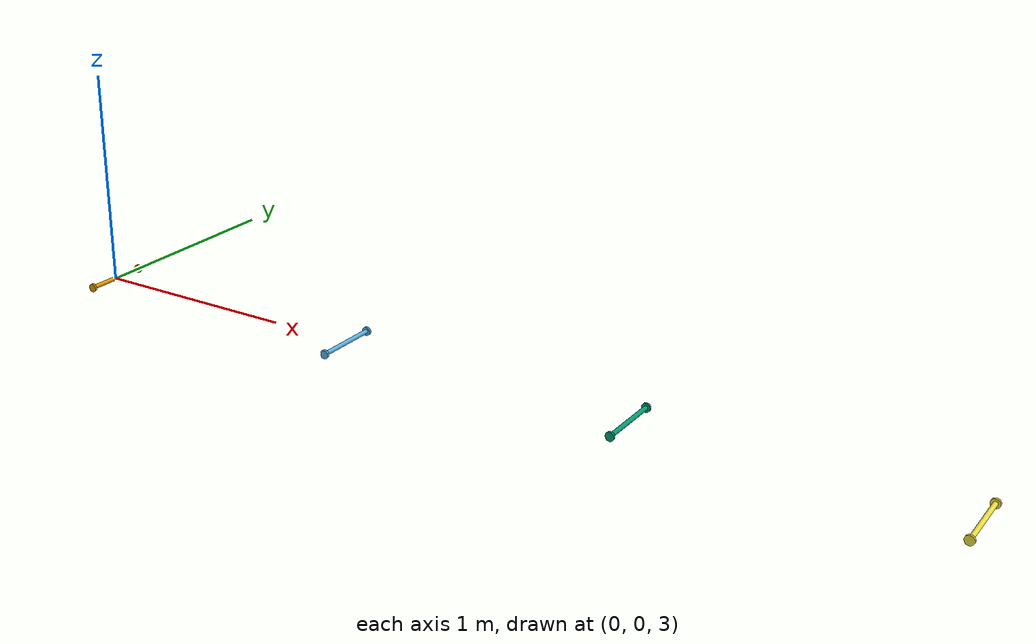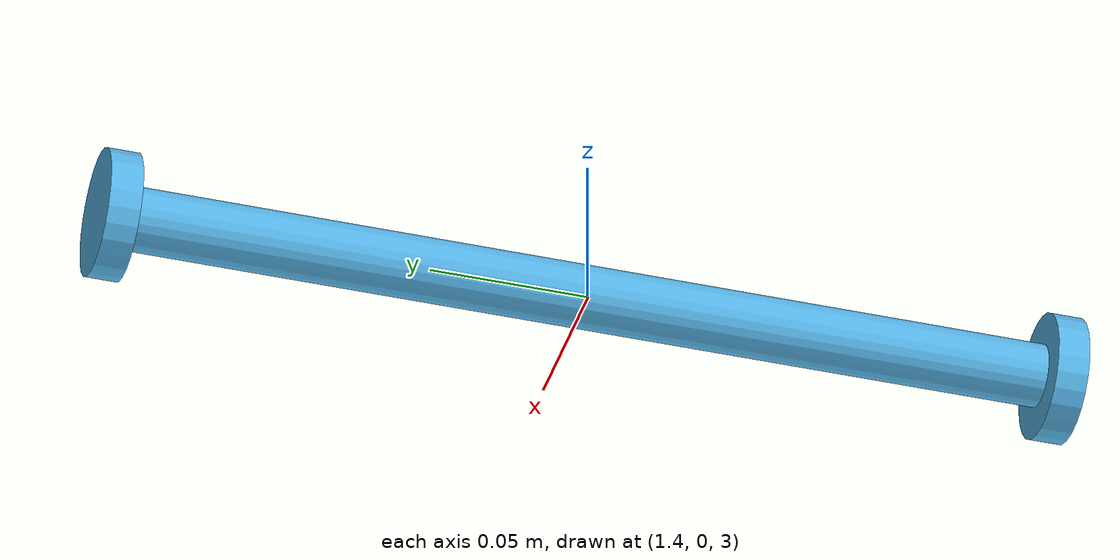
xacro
<?xml version='1.0'?>
<robot xmlns:xacro="http://www.ros.org/wiki/xacro" name="ladder">
  <xacro:include filename="$(find gibbon)/urdf/materials.xacro" />

  <joint name="l_b_1" type="revolute">
    <parent link="ladder__link_0"/>
    <child link="ladder__link_1"/>
    <origin rpy="0 0 0" xyz="0 0 0"/>
    <limit effort="0" lower="0" upper="0" velocity="0"/>
  </joint>

  <joint name="l_b_2" type="revolute">
    <parent link="ladder__link_0"/>
    <child link="ladder__link_2"/>
    <origin rpy="0 0 0" xyz="0 0 0"/>
    <limit effort="0" lower="0" upper="0" velocity="0"/>
  </joint>

  <joint name="l_b_3" type="revolute">
    <parent link="ladder__link_0"/>
    <child link="ladder__link_3"/>
    <origin rpy="0 0 0" xyz="0 0 0"/>
    <limit effort="0" lower="0" upper="0" velocity="0"/>
  </joint>

  <link name='ladder__link_0'>
    <inertial>
      <mass value="1.0"/>
      <inertia ixx="0.1633333333333333" ixy="0.0" ixz="0.0" iyy="0" iyz="0.0" izz="0.0"/>
    </inertial>
    <visual>
      <origin rpy="1.57 0 0" xyz="0 0 3"/>
      <geometry>
        <cylinder length="0.3" radius="0.01"/>
      </geometry>
    </visual>
    <visual>
      <origin rpy="1.57 0 0" xyz="0 0.15 3"/>
      <geometry>
        <cylinder length="0.01" radius="0.02"/>
      </geometry>
    </visual>
    <visual>
      <origin rpy="1.57 0 0" xyz="0 -0.15 3"/>
      <geometry>
        <cylinder length="0.01" radius="0.02"/>
      </geometry>
    </visual>
    <collision>
      <origin rpy="1.57 0 0" xyz="0 0 3"/>
      <geometry>
        <cylinder length="0.3" radius="0.01"/>
      </geometry>
    </collision>
    <collision>
      <origin rpy="1.57 0 0" xyz="0 0.15 3"/>
      <geometry>
        <cylinder length="0.01" radius="0.02"/>
      </geometry>
    </collision>
    <collision>
      <origin rpy="1.57 0 0" xyz="0 -0.15 3"/>
      <geometry>
        <cylinder length="0.01" radius="0.02"/>
      </geometry>
    </collision>
  </link>

  <link name='ladder__link_1'>
    <inertial>
      <mass value="1.0"/>
      <inertia ixx="0.1633333333333333" ixy="0.0" ixz="0.0" iyy="0" iyz="0.0" izz="0.0"/>
    </inertial>
    <visual>
      <origin rpy="1.57 0 0" xyz="1.4 0 3"/>
      <geometry>
        <cylinder length="0.3" radius="0.01"/>
      </geometry>
    </visual>
    <visual>
      <origin rpy="1.57 0 0" xyz="1.4 0.15 3"/>
      <geometry>
        <cylinder length="0.01" radius="0.02"/>
      </geometry>
    </visual>
    <visual>
      <origin rpy="1.57 0 0" xyz="1.4 -0.15 3"/>
      <geometry>
        <cylinder length="0.01" radius="0.02"/>
      </geometry>
    </visual>
    <collision>
      <origin rpy="1.57 0 0" xyz="1.4 0 3"/>
      <geometry>
        <cylinder length="0.3" radius="0.01"/>
      </geometry>
    </collision>
    <collision>
      <origin rpy="1.57 0 0" xyz="1.4 0.15 3"/>
      <geometry>
        <cylinder length="0.01" radius="0.02"/>
      </geometry>
    </collision>
    <collision>
      <origin rpy="1.57 0 0" xyz="1.4 -0.15 3"/>
      <geometry>
        <cylinder length="0.01" radius="0.02"/>
      </geometry>
    </collision>
  </link>

  <link name='ladder__link_2'>
    <inertial>
      <mass value="1.0"/>
      <inertia ixx="0.1633333333333333" ixy="0.0" ixz="0.0" iyy="0" iyz="0.0" izz="0.0"/>
    </inertial>
    <visual>
      <origin rpy="1.57 0 0" xyz="2.8 0 3"/>
      <geometry>
        <cylinder length="0.3" radius="0.01"/>
      </geometry>
    </visual>
    <visual>
      <origin rpy="1.57 0 0" xyz="2.8 0.15 3"/>
      <geometry>
        <cylinder length="0.01" radius="0.02"/>
      </geometry>
    </visual>
    <visual>
      <origin rpy="1.57 0 0" xyz="2.8 -0.15 3"/>
      <geometry>
        <cylinder length="0.01" radius="0.02"/>
      </geometry>
    </visual>
    <collision>
      <origin rpy="1.57 0 0" xyz="2.8 0 3"/>
      <geometry>
        <cylinder length="0.3" radius="0.01"/>
      </geometry>
    </collision>
    <collision>
      <origin rpy="1.57 0 0" xyz="2.8 0.15 3"/>
      <geometry>
        <cylinder length="0.01" radius="0.02"/>
      </geometry>
    </collision>
    <collision>
      <origin rpy="1.57 0 0" xyz="2.8 -0.15 3"/>
      <geometry>
        <cylinder length="0.01" radius="0.02"/>
      </geometry>
    </collision>
  </link>

  <link name='ladder__link_3'>
    <inertial>
      <mass value="1.0"/>
      <inertia ixx="0.1633333333333333" ixy="0.0" ixz="0.0" iyy="0" iyz="0.0" izz="0.0"/>
    </inertial>
    <visual>
      <origin rpy="1.57 0 0" xyz="4.2 0 3"/>
      <geometry>
        <cylinder length="0.3" radius="0.01"/>
      </geometry>
    </visual>
    <visual>
      <origin rpy="1.57 0 0" xyz="4.2 0.15 3"/>
      <geometry>
        <cylinder length="0.01" radius="0.02"/>
      </geometry>
    </visual>
    <visual>
      <origin rpy="1.57 0 0" xyz="4.2 -0.15 3"/>
      <geometry>
        <cylinder length="0.01" radius="0.02"/>
      </geometry>
    </visual>
    <collision>
      <origin rpy="1.57 0 0" xyz="4.2 0 3"/>
      <geometry>
        <cylinder length="0.3" radius="0.01"/>
      </geometry>
    </collision>
    <collision>
      <origin rpy="1.57 0 0" xyz="4.2 0.15 3"/>
      <geometry>
        <cylinder length="0.01" radius="0.02"/>
      </geometry>
    </collision>
    <collision>
      <origin rpy="1.57 0 0" xyz="4.2 -0.15 3"/>
      <geometry>
        <cylinder length="0.01" radius="0.02"/>
      </geometry>
    </collision>
  </link>

  <gazebo>
    <static>true</static>
  </gazebo>
</robot>
